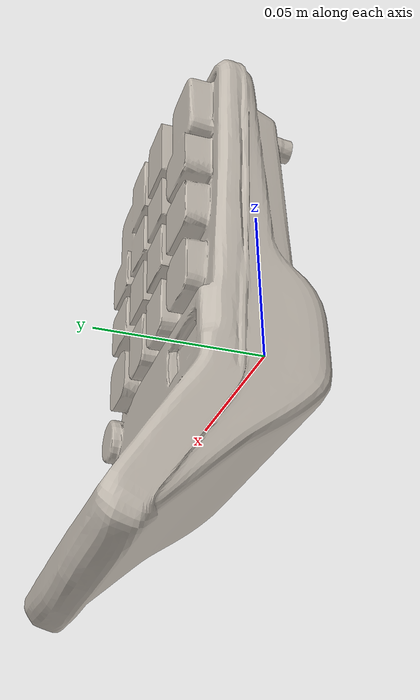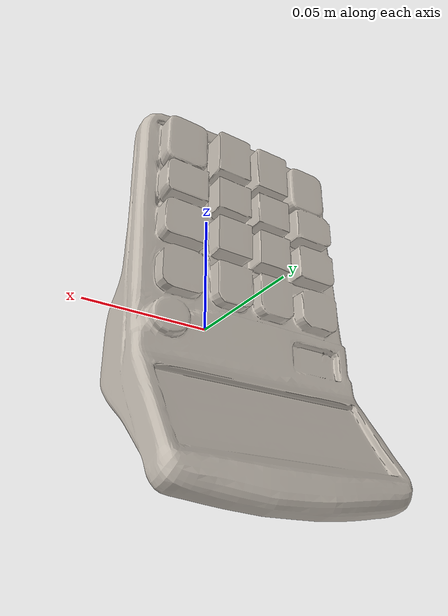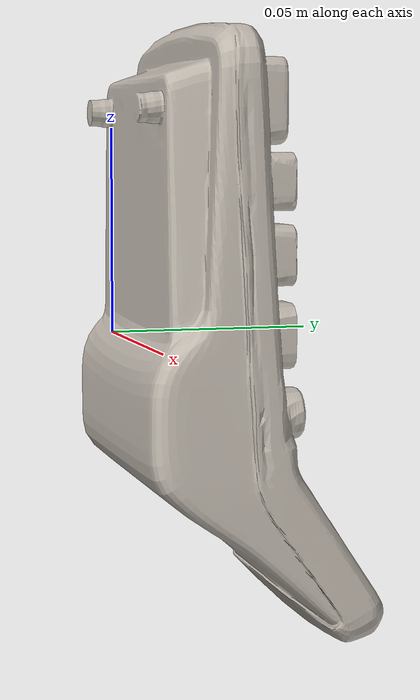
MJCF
<mujoco model="017_calculator">
  <asset>
    <mesh name="017_calculator_visual" file="017_calculator_visual.obj"/>
    <mesh name="017_calculator_collision" file="017_calculator_collision.stl"/>
    <texture name="017_calculator_tex" type="2d" file="017_calculator.png"/>
    <material name="017_calculator_mat" texture="017_calculator_tex"/>
  </asset>
  <worldbody>
    <body name="017_calculator" pos="0 0 0">
      <freejoint/>
      <geom type="mesh" mesh="017_calculator_visual" material="017_calculator_mat"
            mass="0.1535" contype="0" conaffinity="0"/>
      <geom type="mesh" mesh="017_calculator_collision" mass="0"
            contype="1" conaffinity="1"
            friction="0.5 .005 0.01"
            rgba="0 0 0 0"/>
    </body>
  </worldbody>
</mujoco>
